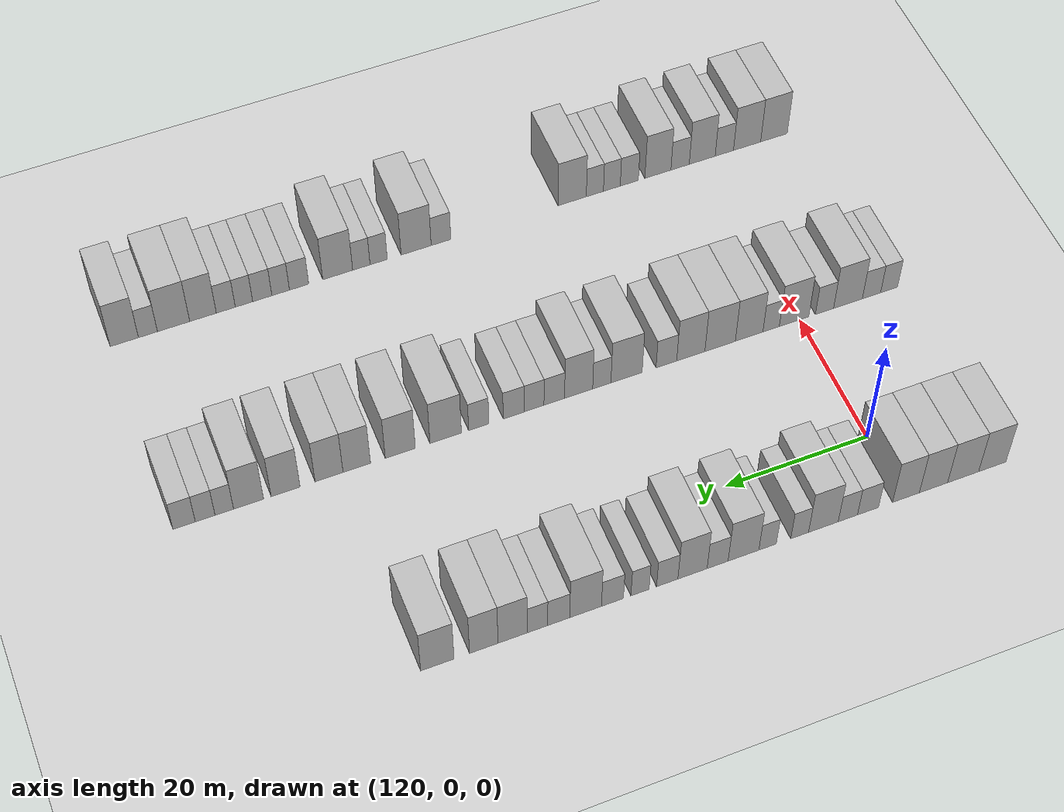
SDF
<sdf version="1.6">
 <world name="default">
  <include>
   <name>ground_plane_2</name>
   <uri>model://HANNAS_ground_plane</uri>
   <pose>100 0 0  0 0 0</pose>
  </include>
  <model name="building_784">
   <static>1</static>
   <pose>115.0000 -12.7891 0 0.000000 0.000000 0.000000</pose>
   <link name="link">
    <pose>0 0 4.50 0 0 0</pose>
    <collision name="collision"><geometry><box><size>10.0000 3.9314 9.0000</size></box></geometry></collision>
    <visual name="visual">
     <cast_shadows>0</cast_shadows>
     <geometry><box><size>10.0000 3.9314 9.0000</size></box></geometry>
     <material>
      <script>
       <uri>model://HANNAS_wall/materials/scripts</uri>
       <uri>model://HANNAS_wall/materials/textures</uri>
       <name>vrc/HANNAS_wall</name>
      </script>
     </material>
    </visual>
   </link>
  </model>
  <model name="building_785">
   <static>1</static>
   <pose>115.0000 -8.5978 0 0.000000 0.000000 0.000000</pose>
   <link name="link">
    <pose>0 0 4.50 0 0 0</pose>
    <collision name="collision"><geometry><box><size>10.0000 4.4512 9.0000</size></box></geometry></collision>
    <visual name="visual">
     <cast_shadows>0</cast_shadows>
     <geometry><box><size>10.0000 4.4512 9.0000</size></box></geometry>
     <material>
      <script>
       <uri>model://HANNAS_wall/materials/scripts</uri>
       <uri>model://HANNAS_wall/materials/textures</uri>
       <name>vrc/HANNAS_wall</name>
      </script>
     </material>
    </visual>
   </link>
  </model>
  <model name="building_786">
   <static>1</static>
   <pose>115.0000 -4.3621 0 0.000000 0.000000 0.000000</pose>
   <link name="link">
    <pose>0 0 4.50 0 0 0</pose>
    <collision name="collision"><geometry><box><size>10.0000 4.0202 9.0000</size></box></geometry></collision>
    <visual name="visual">
     <cast_shadows>0</cast_shadows>
     <geometry><box><size>10.0000 4.0202 9.0000</size></box></geometry>
     <material>
      <script>
       <uri>model://HANNAS_wall/materials/scripts</uri>
       <uri>model://HANNAS_wall/materials/textures</uri>
       <name>vrc/HANNAS_wall</name>
      </script>
     </material>
    </visual>
   </link>
  </model>
  <model name="building_787">
   <static>1</static>
   <pose>115.0000 -0.4600 0 0.000000 0.000000 0.000000</pose>
   <link name="link">
    <pose>0 0 4.50 0 0 0</pose>
    <collision name="collision"><geometry><box><size>10.0000 3.7840 9.0000</size></box></geometry></collision>
    <visual name="visual">
     <cast_shadows>0</cast_shadows>
     <geometry><box><size>10.0000 3.7840 9.0000</size></box></geometry>
     <material>
      <script>
       <uri>model://HANNAS_wall/materials/scripts</uri>
       <uri>model://HANNAS_wall/materials/textures</uri>
       <name>vrc/HANNAS_wall</name>
      </script>
     </material>
    </visual>
   </link>
  </model>
  <model name="building_788">
   <static>1</static>
   <pose>115.0000 4.9110 0 0.000000 0.000000 0.000000</pose>
   <link name="link">
    <pose>0 0 3.00 0 0 0</pose>
    <collision name="collision"><geometry><box><size>10.0000 2.9580 6.0000</size></box></geometry></collision>
    <visual name="visual">
     <cast_shadows>0</cast_shadows>
     <geometry><box><size>10.0000 2.9580 6.0000</size></box></geometry>
     <material>
      <script>
       <uri>model://HANNAS_wall/materials/scripts</uri>
       <uri>model://HANNAS_wall/materials/textures</uri>
       <name>vrc/HANNAS_wall</name>
      </script>
     </material>
    </visual>
   </link>
  </model>
  <model name="building_789">
   <static>1</static>
   <pose>115.0000 7.7374 0 0.000000 0.000000 0.000000</pose>
   <link name="link">
    <pose>0 0 3.00 0 0 0</pose>
    <collision name="collision"><geometry><box><size>10.0000 2.6948 6.0000</size></box></geometry></collision>
    <visual name="visual">
     <cast_shadows>0</cast_shadows>
     <geometry><box><size>10.0000 2.6948 6.0000</size></box></geometry>
     <material>
      <script>
       <uri>model://HANNAS_wall/materials/scripts</uri>
       <uri>model://HANNAS_wall/materials/textures</uri>
       <name>vrc/HANNAS_wall</name>
      </script>
     </material>
    </visual>
   </link>
  </model>
  <model name="building_790">
   <static>1</static>
   <pose>115.0000 11.1507 0 0.000000 0.000000 0.000000</pose>
   <link name="link">
    <pose>0 0 4.50 0 0 0</pose>
    <collision name="collision"><geometry><box><size>10.0000 4.1317 9.0000</size></box></geometry></collision>
    <visual name="visual">
     <cast_shadows>0</cast_shadows>
     <geometry><box><size>10.0000 4.1317 9.0000</size></box></geometry>
     <material>
      <script>
       <uri>model://HANNAS_wall/materials/scripts</uri>
       <uri>model://HANNAS_wall/materials/textures</uri>
       <name>vrc/HANNAS_wall</name>
      </script>
     </material>
    </visual>
   </link>
  </model>
  <model name="building_791">
   <static>1</static>
   <pose>115.0000 14.4430 0 0.000000 0.000000 0.000000</pose>
   <link name="link">
    <pose>0 0 3.00 0 0 0</pose>
    <collision name="collision"><geometry><box><size>10.0000 2.4531 6.0000</size></box></geometry></collision>
    <visual name="visual">
     <cast_shadows>0</cast_shadows>
     <geometry><box><size>10.0000 2.4531 6.0000</size></box></geometry>
     <material>
      <script>
       <uri>model://HANNAS_wall/materials/scripts</uri>
       <uri>model://HANNAS_wall/materials/textures</uri>
       <name>vrc/HANNAS_wall</name>
      </script>
     </material>
    </visual>
   </link>
  </model>
  <model name="building_792">
   <static>1</static>
   <pose>115.0000 18.8707 0 0.000000 0.000000 0.000000</pose>
   <link name="link">
    <pose>0 0 3.00 0 0 0</pose>
    <collision name="collision"><geometry><box><size>10.0000 2.4021 6.0000</size></box></geometry></collision>
    <visual name="visual">
     <cast_shadows>0</cast_shadows>
     <geometry><box><size>10.0000 2.4021 6.0000</size></box></geometry>
     <material>
      <script>
       <uri>model://HANNAS_wall/materials/scripts</uri>
       <uri>model://HANNAS_wall/materials/textures</uri>
       <name>vrc/HANNAS_wall</name>
      </script>
     </material>
    </visual>
   </link>
  </model>
  <model name="building_793">
   <static>1</static>
   <pose>115.0000 22.1770 0 0.000000 0.000000 0.000000</pose>
   <link name="link">
    <pose>0 0 4.50 0 0 0</pose>
    <collision name="collision"><geometry><box><size>10.0000 4.2106 9.0000</size></box></geometry></collision>
    <visual name="visual">
     <cast_shadows>0</cast_shadows>
     <geometry><box><size>10.0000 4.2106 9.0000</size></box></geometry>
     <material>
      <script>
       <uri>model://HANNAS_wall/materials/scripts</uri>
       <uri>model://HANNAS_wall/materials/textures</uri>
       <name>vrc/HANNAS_wall</name>
      </script>
     </material>
    </visual>
   </link>
  </model>
  <model name="building_794">
   <static>1</static>
   <pose>115.0000 25.7119 0 0.000000 0.000000 0.000000</pose>
   <link name="link">
    <pose>0 0 3.00 0 0 0</pose>
    <collision name="collision"><geometry><box><size>10.0000 2.8591 6.0000</size></box></geometry></collision>
    <visual name="visual">
     <cast_shadows>0</cast_shadows>
     <geometry><box><size>10.0000 2.8591 6.0000</size></box></geometry>
     <material>
      <script>
       <uri>model://HANNAS_wall/materials/scripts</uri>
       <uri>model://HANNAS_wall/materials/textures</uri>
       <name>vrc/HANNAS_wall</name>
      </script>
     </material>
    </visual>
   </link>
  </model>
  <model name="building_795">
   <static>1</static>
   <pose>115.0000 29.1222 0 0.000000 0.000000 0.000000</pose>
   <link name="link">
    <pose>0 0 4.50 0 0 0</pose>
    <collision name="collision"><geometry><box><size>10.0000 3.9615 9.0000</size></box></geometry></collision>
    <visual name="visual">
     <cast_shadows>0</cast_shadows>
     <geometry><box><size>10.0000 3.9615 9.0000</size></box></geometry>
     <material>
      <script>
       <uri>model://HANNAS_wall/materials/scripts</uri>
       <uri>model://HANNAS_wall/materials/textures</uri>
       <name>vrc/HANNAS_wall</name>
      </script>
     </material>
    </visual>
   </link>
  </model>
  <model name="building_796">
   <static>1</static>
   <pose>115.0000 32.5412 0 0.000000 0.000000 0.000000</pose>
   <link name="link">
    <pose>0 0 3.00 0 0 0</pose>
    <collision name="collision"><geometry><box><size>10.0000 2.8765 6.0000</size></box></geometry></collision>
    <visual name="visual">
     <cast_shadows>0</cast_shadows>
     <geometry><box><size>10.0000 2.8765 6.0000</size></box></geometry>
     <material>
      <script>
       <uri>model://HANNAS_wall/materials/scripts</uri>
       <uri>model://HANNAS_wall/materials/textures</uri>
       <name>vrc/HANNAS_wall</name>
      </script>
     </material>
    </visual>
   </link>
  </model>
  <model name="building_797">
   <static>1</static>
   <pose>115.0000 36.1989 0 0.000000 0.000000 0.000000</pose>
   <link name="link">
    <pose>0 0 3.00 0 0 0</pose>
    <collision name="collision"><geometry><box><size>10.0000 2.4388 6.0000</size></box></geometry></collision>
    <visual name="visual">
     <cast_shadows>0</cast_shadows>
     <geometry><box><size>10.0000 2.4388 6.0000</size></box></geometry>
     <material>
      <script>
       <uri>model://HANNAS_wall/materials/scripts</uri>
       <uri>model://HANNAS_wall/materials/textures</uri>
       <name>vrc/HANNAS_wall</name>
      </script>
     </material>
    </visual>
   </link>
  </model>
  <model name="building_798">
   <static>1</static>
   <pose>115.0000 39.8829 0 0.000000 0.000000 0.000000</pose>
   <link name="link">
    <pose>0 0 3.00 0 0 0</pose>
    <collision name="collision"><geometry><box><size>10.0000 2.9293 6.0000</size></box></geometry></collision>
    <visual name="visual">
     <cast_shadows>0</cast_shadows>
     <geometry><box><size>10.0000 2.9293 6.0000</size></box></geometry>
     <material>
      <script>
       <uri>model://HANNAS_wall/materials/scripts</uri>
       <uri>model://HANNAS_wall/materials/textures</uri>
       <name>vrc/HANNAS_wall</name>
      </script>
     </material>
    </visual>
   </link>
  </model>
  <model name="building_799">
   <static>1</static>
   <pose>115.0000 43.4470 0 0.000000 0.000000 0.000000</pose>
   <link name="link">
    <pose>0 0 4.50 0 0 0</pose>
    <collision name="collision"><geometry><box><size>10.0000 4.1988 9.0000</size></box></geometry></collision>
    <visual name="visual">
     <cast_shadows>0</cast_shadows>
     <geometry><box><size>10.0000 4.1988 9.0000</size></box></geometry>
     <material>
      <script>
       <uri>model://HANNAS_wall/materials/scripts</uri>
       <uri>model://HANNAS_wall/materials/textures</uri>
       <name>vrc/HANNAS_wall</name>
      </script>
     </material>
    </visual>
   </link>
  </model>
  <model name="building_800">
   <static>1</static>
   <pose>115.0000 47.0000 0 0.000000 0.000000 0.000000</pose>
   <link name="link">
    <pose>0 0 3.00 0 0 0</pose>
    <collision name="collision"><geometry><box><size>10.0000 2.9072 6.0000</size></box></geometry></collision>
    <visual name="visual">
     <cast_shadows>0</cast_shadows>
     <geometry><box><size>10.0000 2.9072 6.0000</size></box></geometry>
     <material>
      <script>
       <uri>model://HANNAS_wall/materials/scripts</uri>
       <uri>model://HANNAS_wall/materials/textures</uri>
       <name>vrc/HANNAS_wall</name>
      </script>
     </material>
    </visual>
   </link>
  </model>
  <model name="building_801">
   <static>1</static>
   <pose>115.0000 49.7979 0 0.000000 0.000000 0.000000</pose>
   <link name="link">
    <pose>0 0 3.00 0 0 0</pose>
    <collision name="collision"><geometry><box><size>10.0000 2.6886 6.0000</size></box></geometry></collision>
    <visual name="visual">
     <cast_shadows>0</cast_shadows>
     <geometry><box><size>10.0000 2.6886 6.0000</size></box></geometry>
     <material>
      <script>
       <uri>model://HANNAS_wall/materials/scripts</uri>
       <uri>model://HANNAS_wall/materials/textures</uri>
       <name>vrc/HANNAS_wall</name>
      </script>
     </material>
    </visual>
   </link>
  </model>
  <model name="building_802">
   <static>1</static>
   <pose>115.0000 53.0472 0 0.000000 0.000000 0.000000</pose>
   <link name="link">
    <pose>0 0 4.50 0 0 0</pose>
    <collision name="collision"><geometry><box><size>10.0000 3.8099 9.0000</size></box></geometry></collision>
    <visual name="visual">
     <cast_shadows>0</cast_shadows>
     <geometry><box><size>10.0000 3.8099 9.0000</size></box></geometry>
     <material>
      <script>
       <uri>model://HANNAS_wall/materials/scripts</uri>
       <uri>model://HANNAS_wall/materials/textures</uri>
       <name>vrc/HANNAS_wall</name>
      </script>
     </material>
    </visual>
   </link>
  </model>
  <model name="building_803">
   <static>1</static>
   <pose>115.0000 56.8012 0 0.000000 0.000000 0.000000</pose>
   <link name="link">
    <pose>0 0 4.50 0 0 0</pose>
    <collision name="collision"><geometry><box><size>10.0000 3.6981 9.0000</size></box></geometry></collision>
    <visual name="visual">
     <cast_shadows>0</cast_shadows>
     <geometry><box><size>10.0000 3.6981 9.0000</size></box></geometry>
     <material>
      <script>
       <uri>model://HANNAS_wall/materials/scripts</uri>
       <uri>model://HANNAS_wall/materials/textures</uri>
       <name>vrc/HANNAS_wall</name>
      </script>
     </material>
    </visual>
   </link>
  </model>
  <model name="building_804">
   <static>1</static>
   <pose>115.0000 62.7987 0 0.000000 0.000000 0.000000</pose>
   <link name="link">
    <pose>0 0 4.50 0 0 0</pose>
    <collision name="collision"><geometry><box><size>10.0000 4.2968 9.0000</size></box></geometry></collision>
    <visual name="visual">
     <cast_shadows>0</cast_shadows>
     <geometry><box><size>10.0000 4.2968 9.0000</size></box></geometry>
     <material>
      <script>
       <uri>model://HANNAS_wall/materials/scripts</uri>
       <uri>model://HANNAS_wall/materials/textures</uri>
       <name>vrc/HANNAS_wall</name>
      </script>
     </material>
    </visual>
   </link>
  </model>
  <model name="building_999">
   <static>1</static>
   <pose>145.0000 -13.3081 0 0.000000 0.000000 0.000000</pose>
   <link name="link">
    <pose>0 0 3.00 0 0 0</pose>
    <collision name="collision"><geometry><box><size>10.0000 2.5460 6.0000</size></box></geometry></collision>
    <visual name="visual">
     <cast_shadows>0</cast_shadows>
     <geometry><box><size>10.0000 2.5460 6.0000</size></box></geometry>
     <material>
      <script>
       <uri>model://HANNAS_wall/materials/scripts</uri>
       <uri>model://HANNAS_wall/materials/textures</uri>
       <name>vrc/HANNAS_wall</name>
      </script>
     </material>
    </visual>
   </link>
  </model>
  <model name="building_1000">
   <static>1</static>
   <pose>145.0000 -10.6587 0 0.000000 0.000000 0.000000</pose>
   <link name="link">
    <pose>0 0 3.00 0 0 0</pose>
    <collision name="collision"><geometry><box><size>10.0000 2.7526 6.0000</size></box></geometry></collision>
    <visual name="visual">
     <cast_shadows>0</cast_shadows>
     <geometry><box><size>10.0000 2.7526 6.0000</size></box></geometry>
     <material>
      <script>
       <uri>model://HANNAS_wall/materials/scripts</uri>
       <uri>model://HANNAS_wall/materials/textures</uri>
       <name>vrc/HANNAS_wall</name>
      </script>
     </material>
    </visual>
   </link>
  </model>
  <model name="building_1001">
   <static>1</static>
   <pose>145.0000 -7.1356 0 0.000000 0.000000 0.000000</pose>
   <link name="link">
    <pose>0 0 4.50 0 0 0</pose>
    <collision name="collision"><geometry><box><size>10.0000 4.2936 9.0000</size></box></geometry></collision>
    <visual name="visual">
     <cast_shadows>0</cast_shadows>
     <geometry><box><size>10.0000 4.2936 9.0000</size></box></geometry>
     <material>
      <script>
       <uri>model://HANNAS_wall/materials/scripts</uri>
       <uri>model://HANNAS_wall/materials/textures</uri>
       <name>vrc/HANNAS_wall</name>
      </script>
     </material>
    </visual>
   </link>
  </model>
  <model name="building_1002">
   <static>1</static>
   <pose>145.0000 -3.6409 0 0.000000 0.000000 0.000000</pose>
   <link name="link">
    <pose>0 0 3.00 0 0 0</pose>
    <collision name="collision"><geometry><box><size>10.0000 2.6959 6.0000</size></box></geometry></collision>
    <visual name="visual">
     <cast_shadows>0</cast_shadows>
     <geometry><box><size>10.0000 2.6959 6.0000</size></box></geometry>
     <material>
      <script>
       <uri>model://HANNAS_wall/materials/scripts</uri>
       <uri>model://HANNAS_wall/materials/textures</uri>
       <name>vrc/HANNAS_wall</name>
      </script>
     </material>
    </visual>
   </link>
  </model>
  <model name="building_1003">
   <static>1</static>
   <pose>145.0000 0.8790 0 0.000000 0.000000 0.000000</pose>
   <link name="link">
    <pose>0 0 4.50 0 0 0</pose>
    <collision name="collision"><geometry><box><size>10.0000 4.3438 9.0000</size></box></geometry></collision>
    <visual name="visual">
     <cast_shadows>0</cast_shadows>
     <geometry><box><size>10.0000 4.3438 9.0000</size></box></geometry>
     <material>
      <script>
       <uri>model://HANNAS_wall/materials/scripts</uri>
       <uri>model://HANNAS_wall/materials/textures</uri>
       <name>vrc/HANNAS_wall</name>
      </script>
     </material>
    </visual>
   </link>
  </model>
  <model name="building_1004">
   <static>1</static>
   <pose>145.0000 4.2576 0 0.000000 0.000000 0.000000</pose>
   <link name="link">
    <pose>0 0 3.00 0 0 0</pose>
    <collision name="collision"><geometry><box><size>10.0000 2.4135 6.0000</size></box></geometry></collision>
    <visual name="visual">
     <cast_shadows>0</cast_shadows>
     <geometry><box><size>10.0000 2.4135 6.0000</size></box></geometry>
     <material>
      <script>
       <uri>model://HANNAS_wall/materials/scripts</uri>
       <uri>model://HANNAS_wall/materials/textures</uri>
       <name>vrc/HANNAS_wall</name>
      </script>
     </material>
    </visual>
   </link>
  </model>
  <model name="building_1005">
   <static>1</static>
   <pose>145.0000 7.4766 0 0.000000 0.000000 0.000000</pose>
   <link name="link">
    <pose>0 0 4.50 0 0 0</pose>
    <collision name="collision"><geometry><box><size>10.0000 4.0245 9.0000</size></box></geometry></collision>
    <visual name="visual">
     <cast_shadows>0</cast_shadows>
     <geometry><box><size>10.0000 4.0245 9.0000</size></box></geometry>
     <material>
      <script>
       <uri>model://HANNAS_wall/materials/scripts</uri>
       <uri>model://HANNAS_wall/materials/textures</uri>
       <name>vrc/HANNAS_wall</name>
      </script>
     </material>
    </visual>
   </link>
  </model>
  <model name="building_1006">
   <static>1</static>
   <pose>145.0000 11.7049 0 0.000000 0.000000 0.000000</pose>
   <link name="link">
    <pose>0 0 4.50 0 0 0</pose>
    <collision name="collision"><geometry><box><size>10.0000 4.4320 9.0000</size></box></geometry></collision>
    <visual name="visual">
     <cast_shadows>0</cast_shadows>
     <geometry><box><size>10.0000 4.4320 9.0000</size></box></geometry>
     <material>
      <script>
       <uri>model://HANNAS_wall/materials/scripts</uri>
       <uri>model://HANNAS_wall/materials/textures</uri>
       <name>vrc/HANNAS_wall</name>
      </script>
     </material>
    </visual>
   </link>
  </model>
  <model name="building_1007">
   <static>1</static>
   <pose>145.0000 15.9631 0 0.000000 0.000000 0.000000</pose>
   <link name="link">
    <pose>0 0 4.50 0 0 0</pose>
    <collision name="collision"><geometry><box><size>10.0000 4.0845 9.0000</size></box></geometry></collision>
    <visual name="visual">
     <cast_shadows>0</cast_shadows>
     <geometry><box><size>10.0000 4.0845 9.0000</size></box></geometry>
     <material>
      <script>
       <uri>model://HANNAS_wall/materials/scripts</uri>
       <uri>model://HANNAS_wall/materials/textures</uri>
       <name>vrc/HANNAS_wall</name>
      </script>
     </material>
    </visual>
   </link>
  </model>
  <model name="building_1008">
   <static>1</static>
   <pose>145.0000 19.4869 0 0.000000 0.000000 0.000000</pose>
   <link name="link">
    <pose>0 0 3.00 0 0 0</pose>
    <collision name="collision"><geometry><box><size>10.0000 2.9630 6.0000</size></box></geometry></collision>
    <visual name="visual">
     <cast_shadows>0</cast_shadows>
     <geometry><box><size>10.0000 2.9630 6.0000</size></box></geometry>
     <material>
      <script>
       <uri>model://HANNAS_wall/materials/scripts</uri>
       <uri>model://HANNAS_wall/materials/textures</uri>
       <name>vrc/HANNAS_wall</name>
      </script>
     </material>
    </visual>
   </link>
  </model>
  <model name="building_1009">
   <static>1</static>
   <pose>145.0000 25.1926 0 0.000000 0.000000 0.000000</pose>
   <link name="link">
    <pose>0 0 4.50 0 0 0</pose>
    <collision name="collision"><geometry><box><size>10.0000 4.4485 9.0000</size></box></geometry></collision>
    <visual name="visual">
     <cast_shadows>0</cast_shadows>
     <geometry><box><size>10.0000 4.4485 9.0000</size></box></geometry>
     <material>
      <script>
       <uri>model://HANNAS_wall/materials/scripts</uri>
       <uri>model://HANNAS_wall/materials/textures</uri>
       <name>vrc/HANNAS_wall</name>
      </script>
     </material>
    </visual>
   </link>
  </model>
  <model name="building_1010">
   <static>1</static>
   <pose>145.0000 28.7086 0 0.000000 0.000000 0.000000</pose>
   <link name="link">
    <pose>0 0 3.00 0 0 0</pose>
    <collision name="collision"><geometry><box><size>10.0000 2.5835 6.0000</size></box></geometry></collision>
    <visual name="visual">
     <cast_shadows>0</cast_shadows>
     <geometry><box><size>10.0000 2.5835 6.0000</size></box></geometry>
     <material>
      <script>
       <uri>model://HANNAS_wall/materials/scripts</uri>
       <uri>model://HANNAS_wall/materials/textures</uri>
       <name>vrc/HANNAS_wall</name>
      </script>
     </material>
    </visual>
   </link>
  </model>
  <model name="building_1011">
   <static>1</static>
   <pose>145.0000 31.9861 0 0.000000 0.000000 0.000000</pose>
   <link name="link">
    <pose>0 0 4.50 0 0 0</pose>
    <collision name="collision"><geometry><box><size>10.0000 3.9716 9.0000</size></box></geometry></collision>
    <visual name="visual">
     <cast_shadows>0</cast_shadows>
     <geometry><box><size>10.0000 3.9716 9.0000</size></box></geometry>
     <material>
      <script>
       <uri>model://HANNAS_wall/materials/scripts</uri>
       <uri>model://HANNAS_wall/materials/textures</uri>
       <name>vrc/HANNAS_wall</name>
      </script>
     </material>
    </visual>
   </link>
  </model>
  <model name="building_1012">
   <static>1</static>
   <pose>145.0000 35.4196 0 0.000000 0.000000 0.000000</pose>
   <link name="link">
    <pose>0 0 3.00 0 0 0</pose>
    <collision name="collision"><geometry><box><size>10.0000 2.8953 6.0000</size></box></geometry></collision>
    <visual name="visual">
     <cast_shadows>0</cast_shadows>
     <geometry><box><size>10.0000 2.8953 6.0000</size></box></geometry>
     <material>
      <script>
       <uri>model://HANNAS_wall/materials/scripts</uri>
       <uri>model://HANNAS_wall/materials/textures</uri>
       <name>vrc/HANNAS_wall</name>
      </script>
     </material>
    </visual>
   </link>
  </model>
  <model name="building_1013">
   <static>1</static>
   <pose>145.0000 38.2410 0 0.000000 0.000000 0.000000</pose>
   <link name="link">
    <pose>0 0 3.00 0 0 0</pose>
    <collision name="collision"><geometry><box><size>10.0000 2.7476 6.0000</size></box></geometry></collision>
    <visual name="visual">
     <cast_shadows>0</cast_shadows>
     <geometry><box><size>10.0000 2.7476 6.0000</size></box></geometry>
     <material>
      <script>
       <uri>model://HANNAS_wall/materials/scripts</uri>
       <uri>model://HANNAS_wall/materials/textures</uri>
       <name>vrc/HANNAS_wall</name>
      </script>
     </material>
    </visual>
   </link>
  </model>
  <model name="building_1014">
   <static>1</static>
   <pose>145.0000 41.0856 0 0.000000 0.000000 0.000000</pose>
   <link name="link">
    <pose>0 0 3.00 0 0 0</pose>
    <collision name="collision"><geometry><box><size>10.0000 2.9416 6.0000</size></box></geometry></collision>
    <visual name="visual">
     <cast_shadows>0</cast_shadows>
     <geometry><box><size>10.0000 2.9416 6.0000</size></box></geometry>
     <material>
      <script>
       <uri>model://HANNAS_wall/materials/scripts</uri>
       <uri>model://HANNAS_wall/materials/textures</uri>
       <name>vrc/HANNAS_wall</name>
      </script>
     </material>
    </visual>
   </link>
  </model>
  <model name="building_1015">
   <static>1</static>
   <pose>145.0000 45.9528 0 0.000000 0.000000 0.000000</pose>
   <link name="link">
    <pose>0 0 3.00 0 0 0</pose>
    <collision name="collision"><geometry><box><size>10.0000 2.7928 6.0000</size></box></geometry></collision>
    <visual name="visual">
     <cast_shadows>0</cast_shadows>
     <geometry><box><size>10.0000 2.7928 6.0000</size></box></geometry>
     <material>
      <script>
       <uri>model://HANNAS_wall/materials/scripts</uri>
       <uri>model://HANNAS_wall/materials/textures</uri>
       <name>vrc/HANNAS_wall</name>
      </script>
     </material>
    </visual>
   </link>
  </model>
  <model name="building_1016">
   <static>1</static>
   <pose>145.0000 50.5113 0 0.000000 0.000000 0.000000</pose>
   <link name="link">
    <pose>0 0 4.50 0 0 0</pose>
    <collision name="collision"><geometry><box><size>10.0000 4.3241 9.0000</size></box></geometry></collision>
    <visual name="visual">
     <cast_shadows>0</cast_shadows>
     <geometry><box><size>10.0000 4.3241 9.0000</size></box></geometry>
     <material>
      <script>
       <uri>model://HANNAS_wall/materials/scripts</uri>
       <uri>model://HANNAS_wall/materials/textures</uri>
       <name>vrc/HANNAS_wall</name>
      </script>
     </material>
    </visual>
   </link>
  </model>
  <model name="building_1017">
   <static>1</static>
   <pose>145.0000 56.7216 0 0.000000 0.000000 0.000000</pose>
   <link name="link">
    <pose>0 0 4.50 0 0 0</pose>
    <collision name="collision"><geometry><box><size>10.0000 4.0966 9.0000</size></box></geometry></collision>
    <visual name="visual">
     <cast_shadows>0</cast_shadows>
     <geometry><box><size>10.0000 4.0966 9.0000</size></box></geometry>
     <material>
      <script>
       <uri>model://HANNAS_wall/materials/scripts</uri>
       <uri>model://HANNAS_wall/materials/textures</uri>
       <name>vrc/HANNAS_wall</name>
      </script>
     </material>
    </visual>
   </link>
  </model>
  <model name="building_1018">
   <static>1</static>
   <pose>145.0000 62.6236 0 0.000000 0.000000 0.000000</pose>
   <link name="link">
    <pose>0 0 4.50 0 0 0</pose>
    <collision name="collision"><geometry><box><size>10.0000 3.7073 9.0000</size></box></geometry></collision>
    <visual name="visual">
     <cast_shadows>0</cast_shadows>
     <geometry><box><size>10.0000 3.7073 9.0000</size></box></geometry>
     <material>
      <script>
       <uri>model://HANNAS_wall/materials/scripts</uri>
       <uri>model://HANNAS_wall/materials/textures</uri>
       <name>vrc/HANNAS_wall</name>
      </script>
     </material>
    </visual>
   </link>
  </model>
  <model name="building_1019">
   <static>1</static>
   <pose>145.0000 66.3606 0 0.000000 0.000000 0.000000</pose>
   <link name="link">
    <pose>0 0 4.50 0 0 0</pose>
    <collision name="collision"><geometry><box><size>10.0000 3.7668 9.0000</size></box></geometry></collision>
    <visual name="visual">
     <cast_shadows>0</cast_shadows>
     <geometry><box><size>10.0000 3.7668 9.0000</size></box></geometry>
     <material>
      <script>
       <uri>model://HANNAS_wall/materials/scripts</uri>
       <uri>model://HANNAS_wall/materials/textures</uri>
       <name>vrc/HANNAS_wall</name>
      </script>
     </material>
    </visual>
   </link>
  </model>
  <model name="building_1020">
   <static>1</static>
   <pose>145.0000 72.1735 0 0.000000 0.000000 0.000000</pose>
   <link name="link">
    <pose>0 0 4.50 0 0 0</pose>
    <collision name="collision"><geometry><box><size>10.0000 3.8590 9.0000</size></box></geometry></collision>
    <visual name="visual">
     <cast_shadows>0</cast_shadows>
     <geometry><box><size>10.0000 3.8590 9.0000</size></box></geometry>
     <material>
      <script>
       <uri>model://HANNAS_wall/materials/scripts</uri>
       <uri>model://HANNAS_wall/materials/textures</uri>
       <name>vrc/HANNAS_wall</name>
      </script>
     </material>
    </visual>
   </link>
  </model>
  <model name="building_1021">
   <static>1</static>
   <pose>145.0000 77.0863 0 0.000000 0.000000 0.000000</pose>
   <link name="link">
    <pose>0 0 4.50 0 0 0</pose>
    <collision name="collision"><geometry><box><size>10.0000 3.9665 9.0000</size></box></geometry></collision>
    <visual name="visual">
     <cast_shadows>0</cast_shadows>
     <geometry><box><size>10.0000 3.9665 9.0000</size></box></geometry>
     <material>
      <script>
       <uri>model://HANNAS_wall/materials/scripts</uri>
       <uri>model://HANNAS_wall/materials/textures</uri>
       <name>vrc/HANNAS_wall</name>
      </script>
     </material>
    </visual>
   </link>
  </model>
  <model name="building_1022">
   <static>1</static>
   <pose>145.0000 80.2884 0 0.000000 0.000000 0.000000</pose>
   <link name="link">
    <pose>0 0 3.00 0 0 0</pose>
    <collision name="collision"><geometry><box><size>10.0000 2.4378 6.0000</size></box></geometry></collision>
    <visual name="visual">
     <cast_shadows>0</cast_shadows>
     <geometry><box><size>10.0000 2.4378 6.0000</size></box></geometry>
     <material>
      <script>
       <uri>model://HANNAS_wall/materials/scripts</uri>
       <uri>model://HANNAS_wall/materials/textures</uri>
       <name>vrc/HANNAS_wall</name>
      </script>
     </material>
    </visual>
   </link>
  </model>
  <model name="building_1023">
   <static>1</static>
   <pose>145.0000 82.8021 0 0.000000 0.000000 0.000000</pose>
   <link name="link">
    <pose>0 0 3.00 0 0 0</pose>
    <collision name="collision"><geometry><box><size>10.0000 2.5894 6.0000</size></box></geometry></collision>
    <visual name="visual">
     <cast_shadows>0</cast_shadows>
     <geometry><box><size>10.0000 2.5894 6.0000</size></box></geometry>
     <material>
      <script>
       <uri>model://HANNAS_wall/materials/scripts</uri>
       <uri>model://HANNAS_wall/materials/textures</uri>
       <name>vrc/HANNAS_wall</name>
      </script>
     </material>
    </visual>
   </link>
  </model>
  <model name="building_1024">
   <static>1</static>
   <pose>145.0000 85.5587 0 0.000000 0.000000 0.000000</pose>
   <link name="link">
    <pose>0 0 3.00 0 0 0</pose>
    <collision name="collision"><geometry><box><size>10.0000 2.9239 6.0000</size></box></geometry></collision>
    <visual name="visual">
     <cast_shadows>0</cast_shadows>
     <geometry><box><size>10.0000 2.9239 6.0000</size></box></geometry>
     <material>
      <script>
       <uri>model://HANNAS_wall/materials/scripts</uri>
       <uri>model://HANNAS_wall/materials/textures</uri>
       <name>vrc/HANNAS_wall</name>
      </script>
     </material>
    </visual>
   </link>
  </model>
  <model name="building_1236">
   <static>1</static>
   <pose>175.0000 -10.3247 0 0.000000 0.000000 0.000000</pose>
   <link name="link">
    <pose>0 0 4.50 0 0 0</pose>
    <collision name="collision"><geometry><box><size>10.0000 4.1489 9.0000</size></box></geometry></collision>
    <visual name="visual">
     <cast_shadows>0</cast_shadows>
     <geometry><box><size>10.0000 4.1489 9.0000</size></box></geometry>
     <material>
      <script>
       <uri>model://HANNAS_wall/materials/scripts</uri>
       <uri>model://HANNAS_wall/materials/textures</uri>
       <name>vrc/HANNAS_wall</name>
      </script>
     </material>
    </visual>
   </link>
  </model>
  <model name="building_1237">
   <static>1</static>
   <pose>175.0000 -6.1335 0 0.000000 0.000000 0.000000</pose>
   <link name="link">
    <pose>0 0 4.50 0 0 0</pose>
    <collision name="collision"><geometry><box><size>10.0000 4.2334 9.0000</size></box></geometry></collision>
    <visual name="visual">
     <cast_shadows>0</cast_shadows>
     <geometry><box><size>10.0000 4.2334 9.0000</size></box></geometry>
     <material>
      <script>
       <uri>model://HANNAS_wall/materials/scripts</uri>
       <uri>model://HANNAS_wall/materials/textures</uri>
       <name>vrc/HANNAS_wall</name>
      </script>
     </material>
    </visual>
   </link>
  </model>
  <model name="building_1238">
   <static>1</static>
   <pose>175.0000 -2.6035 0 0.000000 0.000000 0.000000</pose>
   <link name="link">
    <pose>0 0 3.00 0 0 0</pose>
    <collision name="collision"><geometry><box><size>10.0000 2.8266 6.0000</size></box></geometry></collision>
    <visual name="visual">
     <cast_shadows>0</cast_shadows>
     <geometry><box><size>10.0000 2.8266 6.0000</size></box></geometry>
     <material>
      <script>
       <uri>model://HANNAS_wall/materials/scripts</uri>
       <uri>model://HANNAS_wall/materials/textures</uri>
       <name>vrc/HANNAS_wall</name>
      </script>
     </material>
    </visual>
   </link>
  </model>
  <model name="building_1239">
   <static>1</static>
   <pose>175.0000 0.8074 0 0.000000 0.000000 0.000000</pose>
   <link name="link">
    <pose>0 0 4.50 0 0 0</pose>
    <collision name="collision"><geometry><box><size>10.0000 3.9953 9.0000</size></box></geometry></collision>
    <visual name="visual">
     <cast_shadows>0</cast_shadows>
     <geometry><box><size>10.0000 3.9953 9.0000</size></box></geometry>
     <material>
      <script>
       <uri>model://HANNAS_wall/materials/scripts</uri>
       <uri>model://HANNAS_wall/materials/textures</uri>
       <name>vrc/HANNAS_wall</name>
      </script>
     </material>
    </visual>
   </link>
  </model>
  <model name="building_1240">
   <static>1</static>
   <pose>175.0000 4.2128 0 0.000000 0.000000 0.000000</pose>
   <link name="link">
    <pose>0 0 3.00 0 0 0</pose>
    <collision name="collision"><geometry><box><size>10.0000 2.8154 6.0000</size></box></geometry></collision>
    <visual name="visual">
     <cast_shadows>0</cast_shadows>
     <geometry><box><size>10.0000 2.8154 6.0000</size></box></geometry>
     <material>
      <script>
       <uri>model://HANNAS_wall/materials/scripts</uri>
       <uri>model://HANNAS_wall/materials/textures</uri>
       <name>vrc/HANNAS_wall</name>
      </script>
     </material>
    </visual>
   </link>
  </model>
  <model name="building_1241">
   <static>1</static>
   <pose>175.0000 7.6050 0 0.000000 0.000000 0.000000</pose>
   <link name="link">
    <pose>0 0 4.50 0 0 0</pose>
    <collision name="collision"><geometry><box><size>10.0000 3.9691 9.0000</size></box></geometry></collision>
    <visual name="visual">
     <cast_shadows>0</cast_shadows>
     <geometry><box><size>10.0000 3.9691 9.0000</size></box></geometry>
     <material>
      <script>
       <uri>model://HANNAS_wall/materials/scripts</uri>
       <uri>model://HANNAS_wall/materials/textures</uri>
       <name>vrc/HANNAS_wall</name>
      </script>
     </material>
    </visual>
   </link>
  </model>
  <model name="building_1242">
   <static>1</static>
   <pose>175.0000 11.9584 0 0.000000 0.000000 0.000000</pose>
   <link name="link">
    <pose>0 0 3.00 0 0 0</pose>
    <collision name="collision"><geometry><box><size>10.0000 2.7376 6.0000</size></box></geometry></collision>
    <visual name="visual">
     <cast_shadows>0</cast_shadows>
     <geometry><box><size>10.0000 2.7376 6.0000</size></box></geometry>
     <material>
      <script>
       <uri>model://HANNAS_wall/materials/scripts</uri>
       <uri>model://HANNAS_wall/materials/textures</uri>
       <name>vrc/HANNAS_wall</name>
      </script>
     </material>
    </visual>
   </link>
  </model>
  <model name="building_1243">
   <static>1</static>
   <pose>175.0000 14.5979 0 0.000000 0.000000 0.000000</pose>
   <link name="link">
    <pose>0 0 3.00 0 0 0</pose>
    <collision name="collision"><geometry><box><size>10.0000 2.5415 6.0000</size></box></geometry></collision>
    <visual name="visual">
     <cast_shadows>0</cast_shadows>
     <geometry><box><size>10.0000 2.5415 6.0000</size></box></geometry>
     <material>
      <script>
       <uri>model://HANNAS_wall/materials/scripts</uri>
       <uri>model://HANNAS_wall/materials/textures</uri>
       <name>vrc/HANNAS_wall</name>
      </script>
     </material>
    </visual>
   </link>
  </model>
  <model name="building_1244">
   <static>1</static>
   <pose>175.0000 17.1596 0 0.000000 0.000000 0.000000</pose>
   <link name="link">
    <pose>0 0 3.00 0 0 0</pose>
    <collision name="collision"><geometry><box><size>10.0000 2.5820 6.0000</size></box></geometry></collision>
    <visual name="visual">
     <cast_shadows>0</cast_shadows>
     <geometry><box><size>10.0000 2.5820 6.0000</size></box></geometry>
     <material>
      <script>
       <uri>model://HANNAS_wall/materials/scripts</uri>
       <uri>model://HANNAS_wall/materials/textures</uri>
       <name>vrc/HANNAS_wall</name>
      </script>
     </material>
    </visual>
   </link>
  </model>
  <model name="building_1245">
   <static>1</static>
   <pose>175.0000 20.5714 0 0.000000 0.000000 0.000000</pose>
   <link name="link">
    <pose>0 0 4.50 0 0 0</pose>
    <collision name="collision"><geometry><box><size>10.0000 4.2416 9.0000</size></box></geometry></collision>
    <visual name="visual">
     <cast_shadows>0</cast_shadows>
     <geometry><box><size>10.0000 4.2416 9.0000</size></box></geometry>
     <material>
      <script>
       <uri>model://HANNAS_wall/materials/scripts</uri>
       <uri>model://HANNAS_wall/materials/textures</uri>
       <name>vrc/HANNAS_wall</name>
      </script>
     </material>
    </visual>
   </link>
  </model>
  <model name="building_1246">
   <static>1</static>
   <pose>175.0000 39.9874 0 0.000000 0.000000 0.000000</pose>
   <link name="link">
    <pose>0 0 3.00 0 0 0</pose>
    <collision name="collision"><geometry><box><size>10.0000 2.8635 6.0000</size></box></geometry></collision>
    <visual name="visual">
     <cast_shadows>0</cast_shadows>
     <geometry><box><size>10.0000 2.8635 6.0000</size></box></geometry>
     <material>
      <script>
       <uri>model://HANNAS_wall/materials/scripts</uri>
       <uri>model://HANNAS_wall/materials/textures</uri>
       <name>vrc/HANNAS_wall</name>
      </script>
     </material>
    </visual>
   </link>
  </model>
  <model name="building_1247">
   <static>1</static>
   <pose>175.0000 43.6040 0 0.000000 0.000000 0.000000</pose>
   <link name="link">
    <pose>0 0 4.50 0 0 0</pose>
    <collision name="collision"><geometry><box><size>10.0000 4.3697 9.0000</size></box></geometry></collision>
    <visual name="visual">
     <cast_shadows>0</cast_shadows>
     <geometry><box><size>10.0000 4.3697 9.0000</size></box></geometry>
     <material>
      <script>
       <uri>model://HANNAS_wall/materials/scripts</uri>
       <uri>model://HANNAS_wall/materials/textures</uri>
       <name>vrc/HANNAS_wall</name>
      </script>
     </material>
    </visual>
   </link>
  </model>
  <model name="building_1248">
   <static>1</static>
   <pose>175.0000 49.0327 0 0.000000 0.000000 0.000000</pose>
   <link name="link">
    <pose>0 0 3.00 0 0 0</pose>
    <collision name="collision"><geometry><box><size>10.0000 2.4876 6.0000</size></box></geometry></collision>
    <visual name="visual">
     <cast_shadows>0</cast_shadows>
     <geometry><box><size>10.0000 2.4876 6.0000</size></box></geometry>
     <material>
      <script>
       <uri>model://HANNAS_wall/materials/scripts</uri>
       <uri>model://HANNAS_wall/materials/textures</uri>
       <name>vrc/HANNAS_wall</name>
      </script>
     </material>
    </visual>
   </link>
  </model>
  <model name="building_1249">
   <static>1</static>
   <pose>175.0000 51.5237 0 0.000000 0.000000 0.000000</pose>
   <link name="link">
    <pose>0 0 3.00 0 0 0</pose>
    <collision name="collision"><geometry><box><size>10.0000 2.4944 6.0000</size></box></geometry></collision>
    <visual name="visual">
     <cast_shadows>0</cast_shadows>
     <geometry><box><size>10.0000 2.4944 6.0000</size></box></geometry>
     <material>
      <script>
       <uri>model://HANNAS_wall/materials/scripts</uri>
       <uri>model://HANNAS_wall/materials/textures</uri>
       <name>vrc/HANNAS_wall</name>
      </script>
     </material>
    </visual>
   </link>
  </model>
  <model name="building_1250">
   <static>1</static>
   <pose>175.0000 54.9095 0 0.000000 0.000000 0.000000</pose>
   <link name="link">
    <pose>0 0 4.50 0 0 0</pose>
    <collision name="collision"><geometry><box><size>10.0000 4.2772 9.0000</size></box></geometry></collision>
    <visual name="visual">
     <cast_shadows>0</cast_shadows>
     <geometry><box><size>10.0000 4.2772 9.0000</size></box></geometry>
     <material>
      <script>
       <uri>model://HANNAS_wall/materials/scripts</uri>
       <uri>model://HANNAS_wall/materials/textures</uri>
       <name>vrc/HANNAS_wall</name>
      </script>
     </material>
    </visual>
   </link>
  </model>
  <model name="building_1251">
   <static>1</static>
   <pose>175.0000 60.4152 0 0.000000 0.000000 0.000000</pose>
   <link name="link">
    <pose>0 0 3.00 0 0 0</pose>
    <collision name="collision"><geometry><box><size>10.0000 2.7342 6.0000</size></box></geometry></collision>
    <visual name="visual">
     <cast_shadows>0</cast_shadows>
     <geometry><box><size>10.0000 2.7342 6.0000</size></box></geometry>
     <material>
      <script>
       <uri>model://HANNAS_wall/materials/scripts</uri>
       <uri>model://HANNAS_wall/materials/textures</uri>
       <name>vrc/HANNAS_wall</name>
      </script>
     </material>
    </visual>
   </link>
  </model>
  <model name="building_1252">
   <static>1</static>
   <pose>175.0000 63.0243 0 0.000000 0.000000 0.000000</pose>
   <link name="link">
    <pose>0 0 3.00 0 0 0</pose>
    <collision name="collision"><geometry><box><size>10.0000 2.4841 6.0000</size></box></geometry></collision>
    <visual name="visual">
     <cast_shadows>0</cast_shadows>
     <geometry><box><size>10.0000 2.4841 6.0000</size></box></geometry>
     <material>
      <script>
       <uri>model://HANNAS_wall/materials/scripts</uri>
       <uri>model://HANNAS_wall/materials/textures</uri>
       <name>vrc/HANNAS_wall</name>
      </script>
     </material>
    </visual>
   </link>
  </model>
  <model name="building_1253">
   <static>1</static>
   <pose>175.0000 65.6195 0 0.000000 0.000000 0.000000</pose>
   <link name="link">
    <pose>0 0 3.00 0 0 0</pose>
    <collision name="collision"><geometry><box><size>10.0000 2.7061 6.0000</size></box></geometry></collision>
    <visual name="visual">
     <cast_shadows>0</cast_shadows>
     <geometry><box><size>10.0000 2.7061 6.0000</size></box></geometry>
     <material>
      <script>
       <uri>model://HANNAS_wall/materials/scripts</uri>
       <uri>model://HANNAS_wall/materials/textures</uri>
       <name>vrc/HANNAS_wall</name>
      </script>
     </material>
    </visual>
   </link>
  </model>
  <model name="building_1254">
   <static>1</static>
   <pose>175.0000 68.1948 0 0.000000 0.000000 0.000000</pose>
   <link name="link">
    <pose>0 0 3.00 0 0 0</pose>
    <collision name="collision"><geometry><box><size>10.0000 2.4445 6.0000</size></box></geometry></collision>
    <visual name="visual">
     <cast_shadows>0</cast_shadows>
     <geometry><box><size>10.0000 2.4445 6.0000</size></box></geometry>
     <material>
      <script>
       <uri>model://HANNAS_wall/materials/scripts</uri>
       <uri>model://HANNAS_wall/materials/textures</uri>
       <name>vrc/HANNAS_wall</name>
      </script>
     </material>
    </visual>
   </link>
  </model>
  <model name="building_1255">
   <static>1</static>
   <pose>175.0000 70.7471 0 0.000000 0.000000 0.000000</pose>
   <link name="link">
    <pose>0 0 3.00 0 0 0</pose>
    <collision name="collision"><geometry><box><size>10.0000 2.6603 6.0000</size></box></geometry></collision>
    <visual name="visual">
     <cast_shadows>0</cast_shadows>
     <geometry><box><size>10.0000 2.6603 6.0000</size></box></geometry>
     <material>
      <script>
       <uri>model://HANNAS_wall/materials/scripts</uri>
       <uri>model://HANNAS_wall/materials/textures</uri>
       <name>vrc/HANNAS_wall</name>
      </script>
     </material>
    </visual>
   </link>
  </model>
  <model name="building_1256">
   <static>1</static>
   <pose>175.0000 73.9267 0 0.000000 0.000000 0.000000</pose>
   <link name="link">
    <pose>0 0 4.50 0 0 0</pose>
    <collision name="collision"><geometry><box><size>10.0000 3.6988 9.0000</size></box></geometry></collision>
    <visual name="visual">
     <cast_shadows>0</cast_shadows>
     <geometry><box><size>10.0000 3.6988 9.0000</size></box></geometry>
     <material>
      <script>
       <uri>model://HANNAS_wall/materials/scripts</uri>
       <uri>model://HANNAS_wall/materials/textures</uri>
       <name>vrc/HANNAS_wall</name>
      </script>
     </material>
    </visual>
   </link>
  </model>
  <model name="building_1257">
   <static>1</static>
   <pose>175.0000 78.0092 0 0.000000 0.000000 0.000000</pose>
   <link name="link">
    <pose>0 0 4.50 0 0 0</pose>
    <collision name="collision"><geometry><box><size>10.0000 4.4663 9.0000</size></box></geometry></collision>
    <visual name="visual">
     <cast_shadows>0</cast_shadows>
     <geometry><box><size>10.0000 4.4663 9.0000</size></box></geometry>
     <material>
      <script>
       <uri>model://HANNAS_wall/materials/scripts</uri>
       <uri>model://HANNAS_wall/materials/textures</uri>
       <name>vrc/HANNAS_wall</name>
      </script>
     </material>
    </visual>
   </link>
  </model>
  <model name="building_1258">
   <static>1</static>
   <pose>175.0000 81.5482 0 0.000000 0.000000 0.000000</pose>
   <link name="link">
    <pose>0 0 3.00 0 0 0</pose>
    <collision name="collision"><geometry><box><size>10.0000 2.6115 6.0000</size></box></geometry></collision>
    <visual name="visual">
     <cast_shadows>0</cast_shadows>
     <geometry><box><size>10.0000 2.6115 6.0000</size></box></geometry>
     <material>
      <script>
       <uri>model://HANNAS_wall/materials/scripts</uri>
       <uri>model://HANNAS_wall/materials/textures</uri>
       <name>vrc/HANNAS_wall</name>
      </script>
     </material>
    </visual>
   </link>
  </model>
  <model name="building_1259">
   <static>1</static>
   <pose>175.0000 84.8005 0 0.000000 0.000000 0.000000</pose>
   <link name="link">
    <pose>0 0 4.50 0 0 0</pose>
    <collision name="collision"><geometry><box><size>10.0000 3.8930 9.0000</size></box></geometry></collision>
    <visual name="visual">
     <cast_shadows>0</cast_shadows>
     <geometry><box><size>10.0000 3.8930 9.0000</size></box></geometry>
     <material>
      <script>
       <uri>model://HANNAS_wall/materials/scripts</uri>
       <uri>model://HANNAS_wall/materials/textures</uri>
       <name>vrc/HANNAS_wall</name>
      </script>
     </material>
    </visual>
   </link>
  </model>
 </world>
</sdf>
